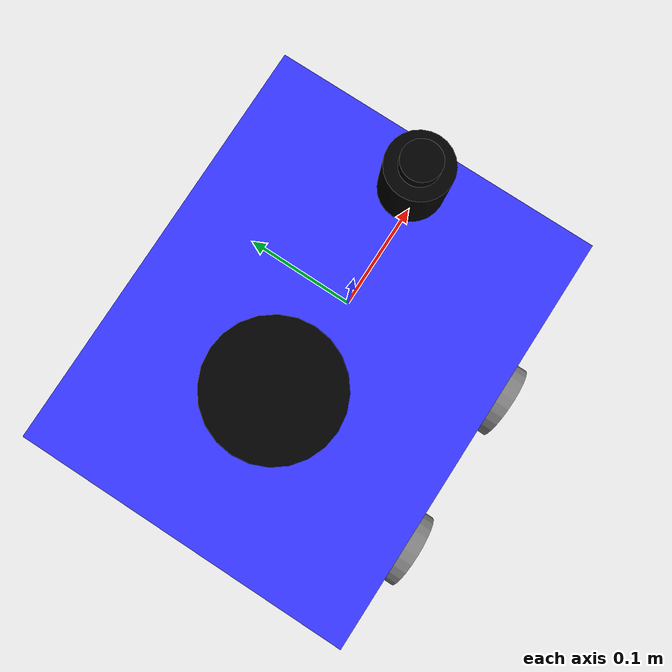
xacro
<?xml version="1.0"?>
<robot xmlns:xacro="http://www.ros.org/wiki/xacro" name="my_robot">

  <!-- Include Xacro files -->
  <xacro:include filename="inertial_macros.xacro"/>
  <xacro:include filename="lidar.xacro"/>
  <xacro:include filename="camera.xacro"/>
  <xacro:arg name="sim_mode" default="true"/>

  <!-- Properties -->
  <xacro:property name="chassis_length" value="0.335"/>
  <xacro:property name="chassis_width" value="0.265"/>
  <xacro:property name="chassis_height" value="0.138"/>
  <xacro:property name="chassis_mass" value="1.0"/>
  <xacro:property name="wheel_radius" value="0.033"/>
  <xacro:property name="wheel_thickness" value="0.026"/>
  <xacro:property name="wheel_mass" value="0.05"/>
  <xacro:property name="wheel_offset_x" value="0.226"/>
  <xacro:property name="wheel_offset_y" value="0.1485"/>
  <xacro:property name="wheel_offset_z" value="0.01"/>
  <xacro:property name="caster_wheel_radius" value="0.01"/>
  <xacro:property name="caster_wheel_mass" value="0.01"/>
  <xacro:property name="caster_wheel_offset_x" value="0.075"/>
  <xacro:property name="caster_wheel_offset_z" value="${wheel_offset_z - wheel_radius + caster_wheel_radius}"/>

  <!-- Materials -->
  <material name="white"><color rgba="1 1 1 1"/></material>
  <material name="orange"><color rgba="1 0.3 0.1 1"/></material>
  <material name="blue"><color rgba="0.2 0.2 1 1"/></material>
  <material name="gray"><color rgba="0.5 0.5 0.5 1"/></material>
  <material name="black"><color rgba="0 0 0 1"/></material>

  <!-- Links -->
  <link name="base_link"/>

  <joint name="base_footprint_joint" type="fixed">
    <parent link="base_link"/>
    <child link="base_footprint"/>
    <origin xyz="0 0 0" rpy="0 0 0"/>
  </joint>

  <link name="base_footprint"/>

  <!-- Chassis -->
  <joint name="chassis_joint" type="fixed">
    <parent link="base_link"/>
    <child link="chassis"/>
    <origin xyz="${-wheel_offset_x} 0 ${-wheel_offset_z}"/>
  </joint>

  <link name="chassis">
    <visual>
      <origin xyz="${chassis_length/2} 0 ${chassis_height/2}"/>
      <geometry>
        <box size="${chassis_length} ${chassis_width} ${chassis_height}"/>
      </geometry>
      <material name="blue"/>
    </visual>
    <collision>
      <origin xyz="${chassis_length/2} 0 ${chassis_height/2}"/>
      <geometry>
        <box size="${chassis_length} ${chassis_width} ${chassis_height}"/>
      </geometry>
    </collision>
    <xacro:inertial_box mass="0.5" x="${chassis_length}" y="${chassis_width}" z="${chassis_height}">
      <origin xyz="${chassis_length/2} 0 ${chassis_height/2}" rpy="0 0 0"/>
    </xacro:inertial_box>
  </link>

  <gazebo reference="chassis">
    <material>Gazebo/Blue</material>
  </gazebo>

  <!-- Wheels (rear_left, rear_right, front_left, front_right) -->
  <xacro:macro name="wheel" params="name xyz rpy axis">
    <joint name="${name}_joint" type="continuous">
      <parent link="base_link"/>
      <child link="${name}"/>
      <origin xyz="${xyz}" rpy="${rpy}"/>
      <axis xyz="${axis}"/>
    </joint>
    <link name="${name}">
      <visual>
        <geometry>
          <cylinder radius="${wheel_radius}" length="${wheel_thickness}"/>
        </geometry>
        <material name="gray"/>
      </visual>
      <collision>
        <geometry>
          <cylinder radius="${wheel_radius}" length="${wheel_thickness}"/>
        </geometry>
      </collision>
      <xacro:inertial_cylinder mass="${wheel_mass}" length="${wheel_thickness}" radius="${wheel_radius}">
        <origin xyz="0 0 0" rpy="0 0 0"/>
      </xacro:inertial_cylinder>
    </link>
    <gazebo reference="${name}">
      <material>Gazebo/Gray</material>
    </gazebo>
  </xacro:macro>

  <!-- Rear Wheels (Now front) -->
  <xacro:wheel name="front_left_wheel" xyz="${-0.15} ${wheel_offset_y} 0" rpy="-1.5708 0 0" axis="0 0 1"/>
  <xacro:wheel name="front_right_wheel" xyz="${-0.15} ${-wheel_offset_y} 0" rpy="1.5708 0 0" axis="0 0 -1"/>

  <!-- Front Wheels (Now back) -->
  <xacro:wheel name="rear_left_wheel" xyz="0 ${wheel_offset_y} 0" rpy="-1.5708 0 0" axis="0 0 1"/>
  <xacro:wheel name="rear_right_wheel" xyz="0 ${-wheel_offset_y} 0" rpy="1.5708 0 0" axis="0 0 -1"/>

  <!-- Caster Wheel -->
  <joint name="caster_wheel_joint" type="fixed">
    <parent link="chassis"/>
    <child link="caster_wheel"/>
    <origin xyz="${caster_wheel_offset_x} 0 ${caster_wheel_offset_z}"/>
  </joint>

  <link name="caster_wheel">
    <visual>
      <geometry>
        <sphere radius="${caster_wheel_radius}"/>
      </geometry>
      <material name="white"/>
    </visual>
    <collision>
      <geometry>
        <sphere radius="${caster_wheel_radius}"/>
      </geometry>
    </collision>
    <xacro:inertial_sphere mass="${caster_wheel_mass}" radius="${caster_wheel_radius}">
      <origin xyz="0 0 0" rpy="0 0 0"/>
    </xacro:inertial_sphere>
  </link>

  <gazebo reference="caster_wheel">
    <material>Gazebo/White</material>
    <mu1 value="0.001"/>
    <mu2 value="0.001"/>
  </gazebo>

  <!-- Gazebo Plugin -->
  <gazebo>
    <plugin name="diff_drive_controller" filename="libgazebo_ros_diff_drive.so">
      <ros>
        <namespace>/</namespace>
      </ros>
      <left_joint>rear_left_wheel_joint</left_joint>
      <right_joint>rear_right_wheel_joint</right_joint>
      <wheel_separation>${wheel_offset_y * 2}</wheel_separation>
      <wheel_diameter>${wheel_radius * 2}</wheel_diameter>
      <max_wheel_torque>200</max_wheel_torque>
      <max_wheel_acceleration>10.0</max_wheel_acceleration>
      <odometry_frame>odom</odometry_frame>
      <robot_base_frame>base_link</robot_base_frame>
      <publish_odom>true</publish_odom>
      <publish_odom_tf>true</publish_odom_tf>
      <publish_wheel_tf>true</publish_wheel_tf>
    </plugin>
  </gazebo>

</robot>

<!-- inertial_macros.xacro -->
<robot xmlns:xacro="http://www.ros.org/wiki/xacro" >

  <!-- Macros existantes -->
  <xacro:macro name="inertial_sphere" params="mass radius *origin">
    <inertial>
      <xacro:insert_block name="origin"/>
      <mass value="${mass}" />
      <inertia ixx="${(2/5) * mass * (radius*radius)}" ixy="0.0" ixz="0.0"
               iyy="${(2/5) * mass * (radius*radius)}" iyz="0.0"
               izz="${(2/5) * mass * (radius*radius)}" />
    </inertial>
  </xacro:macro>

  <xacro:macro name="inertial_box" params="mass x y z *origin">
    <inertial>
      <xacro:insert_block name="origin"/>
      <mass value="${mass}" />
      <inertia ixx="${(1/12) * mass * (y*y + z*z)}" ixy="0.0" ixz="0.0"
               iyy="${(1/12) * mass * (x*x + z*z)}" iyz="0.0"
               izz="${(1/12) * mass * (x*x + y*y)}" />
    </inertial>
  </xacro:macro>

  <!-- ✅ Nouvelle macro à ajouter -->
  <xacro:macro name="inertial_cylinder" params="mass length radius *origin">
    <inertial>
      <xacro:insert_block name="origin"/>
      <mass value="${mass}" />
      <!-- Assuming cylinder aligned along x-axis -->
      <inertia ixx="${(1/2) * mass * (radius*radius)}" ixy="0.0" ixz="0.0"
               iyy="${(1/12) * mass * (3*radius*radius + length*length)}" iyz="0.0"
               izz="${(1/12) * mass * (3*radius*radius + length*length)}" />
    </inertial>
  </xacro:macro>

</robot>

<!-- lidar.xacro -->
<robot xmlns:xacro="http://www.ros.org/wiki/xacro">

  <joint name="laser_joint" type="fixed">
    <parent link="chassis"/>
    <child link="laser_frame"/>
    <origin xyz="0.122 0 0.16" rpy="0 0 0"/>
  </joint>

  <link name="laser_frame">
    <visual>
      <origin xyz="0 0 0"/>
      <geometry>
        <cylinder radius="0.05" length="0.04"/>
      </geometry>
      <material name="black"/>
    </visual>
    <collision>
      <origin xyz="0 0 0"/>
      <geometry>
        <cylinder radius="0.05" length="0.04"/>
      </geometry>
    </collision>
    <xacro:inertial_cylinder mass="0.1" length="0.04" radius="0.05">
      <origin xyz="0 0 0" rpy="0 0 0"/>
    </xacro:inertial_cylinder>
  </link>

  <gazebo reference="laser_frame">
    <material>Gazebo/Black</material>
    <sensor name="laser" type="ray">
      <pose>0 0 0 0 0 0</pose>
      <visualize>false</visualize>
      <update_rate>10</update_rate>
      <ray>
        <scan>
          <horizontal>
            <samples>360</samples>
            <min_angle>-3.14</min_angle>
            <max_angle>3.14</max_angle>
          </horizontal>
        </scan>
        <range>
          <min>0.3</min>
          <max>12</max>
        </range>
      </ray>
      <plugin name="laser_controller" filename="libgazebo_ros_ray_sensor.so">
        <ros>
          <argument>~/out:=scan</argument>
        </ros>
        <output_type>sensor_msgs/LaserScan</output_type>
        <frame_name>laser_frame</frame_name>
      </plugin>
    </sensor>
  </gazebo>

</robot>

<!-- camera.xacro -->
<robot xmlns:xacro="http://www.ros.org/wiki/xacro">

  <!-- Mount camera on chassis -->
  <joint name="camera_joint" type="fixed">
    <parent link="chassis"/>
    <child link="camera_link"/>
    <origin xyz="0.3 0 0.16" rpy="0 0 0"/> <!-- No tilt, camera is straight -->
  </joint>

  <!-- Camera link with body and lens -->
  <link name="camera_link">

    <!-- Cylindrical camera body -->
    <visual>
      <origin xyz="0 0 0"/>
      <geometry>
        <cylinder radius="0.025" length="0.05"/>
      </geometry>
      <material name="black"/>
    </visual>

    <!-- Small front lens -->
    <visual>
      <origin xyz="0 0 0.03"/>
      <geometry>
        <cylinder radius="0.015" length="0.01"/>
      </geometry>
      <material name="black"/>
    </visual>

    <!-- Collision for camera body -->
    <collision>
      <origin xyz="0 0 0"/>
      <geometry>
        <cylinder radius="0.025" length="0.05"/>
      </geometry>
    </collision>

    <!-- Inertial for camera -->
    <xacro:inertial_cylinder mass="0.2" length="0.05" radius="0.025">
      <origin xyz="0 0 0" rpy="0 0 0"/>
    </xacro:inertial_cylinder>
  </link>

  <!-- Optical frame for ROS-compatible image projection -->
  <joint name="camera_optical_joint" type="fixed">
    <parent link="camera_link"/>
    <child link="camera_link_optical"/>
    <origin xyz="0 0 0" rpy="${-pi/2} 0 ${-pi/2}"/>
  </joint>

  <link name="camera_link_optical"/>

  <!-- Gazebo camera plugin -->
  <gazebo reference="camera_link">
    <material>Gazebo/Black</material>
    <sensor name="camera" type="camera">
      <pose>0 0 0 0 0 0</pose>
      <visualize>true</visualize>
      <update_rate>10</update_rate>
      <camera>
        <horizontal_fov>1.089</horizontal_fov>
        <image>
          <format>R8G8B8</format>
          <width>1080</width>
          <height>720</height>
        </image>
        <clip>
          <near>0.05</near>
          <far>8.0</far>
        </clip>
      </camera>
      <plugin name="camera_controller" filename="libgazebo_ros_camera.so">
        <frame_name>camera_link_optical</frame_name>
      </plugin>
    </sensor>
  </gazebo>

</robot>
